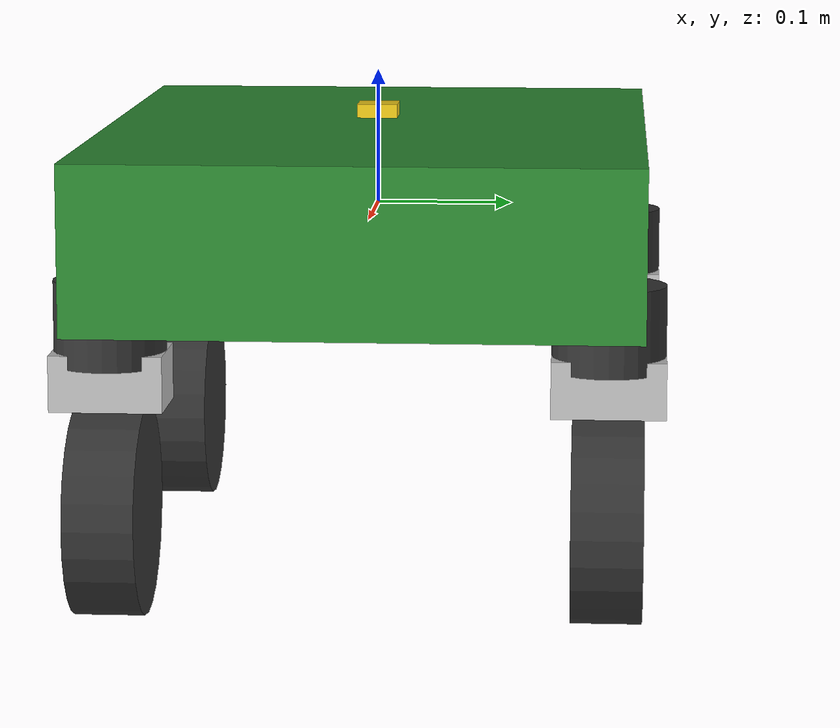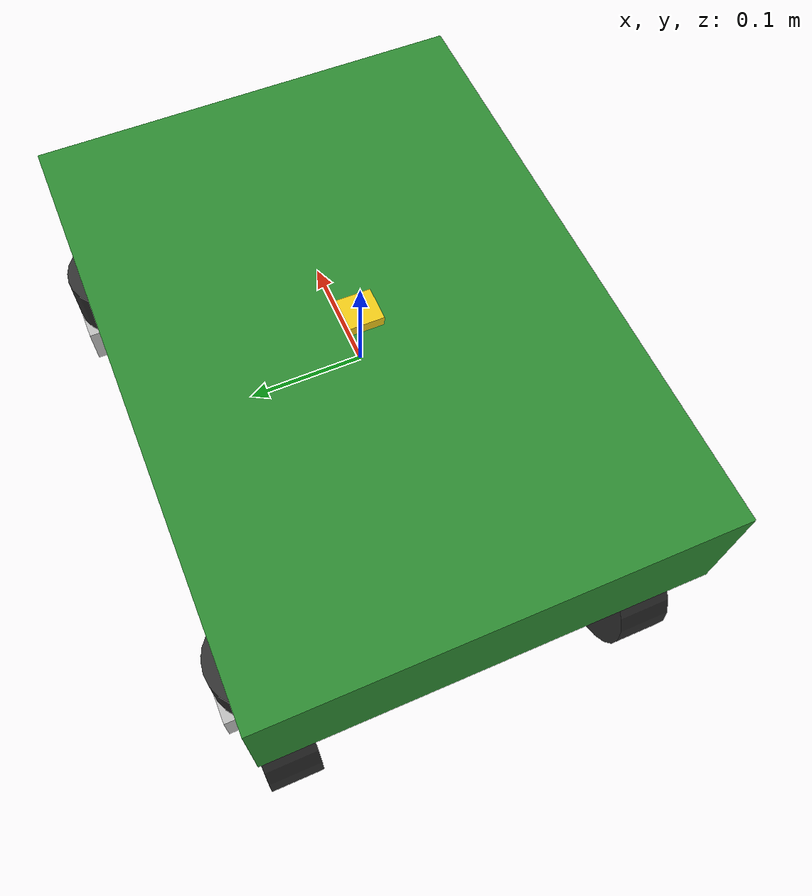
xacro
<?xml version="1.0"?>
<robot name="robot_padi_swerve" xmlns:xacro="http://www.ros.org/wiki/xacro">

  <!-- ═══ PARAMETER ═══════════════════════════════════════════════ -->
  <xacro:property name="wheel_base"    value="0.40"/>  <!-- jarak depan-belakang -->
  <xacro:property name="track_width"   value="0.35"/>  <!-- jarak kiri-kanan -->
  <xacro:property name="wheel_radius"  value="0.075"/> <!-- jari-jari roda -->
  <xacro:property name="wheel_width"   value="0.05"/>  <!-- lebar roda -->
  <xacro:property name="chassis_l"     value="0.55"/>
  <xacro:property name="chassis_w"     value="0.40"/>
  <xacro:property name="chassis_h"     value="0.12"/>
  <xacro:property name="chassis_mass"  value="8.0"/>
  <xacro:property name="wheel_mass"    value="0.4"/>
  <xacro:property name="module_mass"   value="0.5"/>

  <!-- ═══ MATERIAL ════════════════════════════════════════════════ -->
  <material name="green_matte">
    <color rgba="0.18 0.55 0.20 1.0"/>
  </material>
  <material name="dark_gray">
    <color rgba="0.20 0.20 0.20 1.0"/>
  </material>
  <material name="silver">
    <color rgba="0.75 0.75 0.75 1.0"/>
  </material>
  <material name="yellow">
    <color rgba="0.95 0.80 0.10 1.0"/>
  </material>

  <!-- ═══ INERTIA MACROS ══════════════════════════════════════════ -->
  <xacro:macro name="box_inertia" params="m l w h">
    <inertial>
      <mass value="${m}"/>
      <inertia
        ixx="${m*(w*w+h*h)/12}" ixy="0" ixz="0"
        iyy="${m*(l*l+h*h)/12}" iyz="0"
        izz="${m*(l*l+w*w)/12}"/>
    </inertial>
  </xacro:macro>

  <xacro:macro name="cylinder_inertia" params="m r h">
    <inertial>
      <mass value="${m}"/>
      <inertia
        ixx="${m*(3*r*r+h*h)/12}" ixy="0" ixz="0"
        iyy="${m*(3*r*r+h*h)/12}" iyz="0"
        izz="${m*r*r/2}"/>
    </inertial>
  </xacro:macro>

  <!-- ═══ CHASSIS (BASE LINK) ═════════════════════════════════════ -->
  <link name="base_link">
    <visual>
      <geometry>
        <box size="${chassis_l} ${chassis_w} ${chassis_h}"/>
      </geometry>
      <material name="green_matte"/>
    </visual>
    <collision>
      <geometry>
        <box size="${chassis_l} ${chassis_w} ${chassis_h}"/>
      </geometry>
    </collision>
    <xacro:box_inertia m="${chassis_mass}" l="${chassis_l}" w="${chassis_w}" h="${chassis_h}"/>
  </link>

  <!-- IMU Link -->
  <link name="imu_link">
    <visual>
      <geometry><box size="0.03 0.03 0.01"/></geometry>
      <material name="yellow"/>
    </visual>
    <inertial><mass value="0.01"/><inertia ixx="1e-6" ixy="0" ixz="0" iyy="1e-6" iyz="0" izz="1e-6"/></inertial>
  </link>
  <joint name="imu_joint" type="fixed">
    <parent link="base_link"/>
    <child link="imu_link"/>
    <origin xyz="0 0 ${chassis_h/2 + 0.01}" rpy="0 0 0"/>
  </joint>

  <!-- ═══ SWERVE MODULE MACRO ═════════════════════════════════════ -->
  <!--
    Setiap modul terdiri dari:
      [base_link] --fixed--> [module_mount_X] --revolute(Z)--> [X_steer_link] --continuous(Y)--> [X_wheel]
  -->
  <xacro:macro name="swerve_module" params="name x y">

    <!-- Mount frame (fixed ke chassis) -->
    <link name="${name}_mount">
      <visual>
        <geometry><cylinder radius="0.04" length="0.06"/></geometry>
        <material name="dark_gray"/>
      </visual>
      <inertial>
        <mass value="0.1"/>
        <inertia ixx="1e-4" ixy="0" ixz="0" iyy="1e-4" iyz="0" izz="1e-4"/>
      </inertial>
    </link>
    <joint name="${name}_mount_joint" type="fixed">
      <parent link="base_link"/>
      <child link="${name}_mount"/>
      <origin xyz="${x} ${y} ${-chassis_h/2}" rpy="0 0 0"/>
    </joint>

    <!-- Steering link (berputar sumbu Z) -->
    <link name="${name}_steer_link">
      <visual>
        <geometry><box size="0.06 0.08 0.04"/></geometry>
        <material name="silver"/>
      </visual>
      <collision>
        <geometry><box size="0.06 0.08 0.04"/></geometry>
      </collision>
      <xacro:box_inertia m="${module_mass}" l="0.06" w="0.08" h="0.04"/>
    </link>
    <joint name="${name}_steering_joint" type="revolute">
      <parent link="${name}_mount"/>
      <child link="${name}_steer_link"/>
      <origin xyz="0 0 -0.04" rpy="0 0 0"/>
      <axis xyz="0 0 1"/>
      <limit lower="-3.14159" upper="3.14159" effort="10.0" velocity="3.0"/>
      <dynamics damping="0.5" friction="0.1"/>
    </joint>

    <!-- Roda (berputar sumbu Y) -->
    <link name="${name}_wheel">
      <visual>
        <geometry>
          <cylinder radius="${wheel_radius}" length="${wheel_width}"/>
        </geometry>
        <origin rpy="1.5708 0 0"/>
        <material name="dark_gray"/>
      </visual>
      <collision>
        <geometry>
          <cylinder radius="${wheel_radius}" length="${wheel_width}"/>
        </geometry>
        <origin rpy="1.5708 0 0"/>
      </collision>
      <xacro:cylinder_inertia m="${wheel_mass}" r="${wheel_radius}" h="${wheel_width}"/>
    </link>
    <joint name="${name}_wheel_joint" type="continuous">
      <parent link="${name}_steer_link"/>
      <child link="${name}_wheel"/>
      <origin xyz="0 0 ${-wheel_radius - 0.02}" rpy="0 0 0"/>
      <axis xyz="0 1 0"/>
      <dynamics damping="0.1" friction="0.05"/>
    </joint>

  </xacro:macro>

  <!-- ═══ INSTANTIASI 4 MODUL SWERVE ═════════════════════════════ -->
  <xacro:swerve_module name="front_left"
      x="${wheel_base/2}"   y="${track_width/2}"/>
  <xacro:swerve_module name="front_right"
      x="${wheel_base/2}"   y="${-track_width/2}"/>
  <xacro:swerve_module name="rear_left"
      x="${-wheel_base/2}"  y="${track_width/2}"/>
  <xacro:swerve_module name="rear_right"
      x="${-wheel_base/2}"  y="${-track_width/2}"/>

  <!-- ═══ GAZEBO PLUGINS ══════════════════════════════════════════ -->
  <gazebo>
    <plugin filename="libgazebo_ros2_control.so" name="gazebo_ros2_control">
      <parameters>$(find swerve_description)/config/ros2_control.yaml</parameters>
    </plugin>
  </gazebo>

  <!-- Material Gazebo -->
  <gazebo reference="base_link">
    <material>Gazebo/Green</material>
  </gazebo>
  <gazebo reference="front_left_wheel">
    <material>Gazebo/DarkGray</material>
    <mu1>0.8</mu1>
    <mu2>0.8</mu2>
    <kp>500000.0</kp>
    <kd>10.0</kd>
  </gazebo>
  <gazebo reference="front_right_wheel">
    <material>Gazebo/DarkGray</material>
    <mu1>0.8</mu1><mu2>0.8</mu2><kp>500000.0</kp><kd>10.0</kd>
  </gazebo>
  <gazebo reference="rear_left_wheel">
    <material>Gazebo/DarkGray</material>
    <mu1>0.8</mu1><mu2>0.8</mu2><kp>500000.0</kp><kd>10.0</kd>
  </gazebo>
  <gazebo reference="rear_right_wheel">
    <material>Gazebo/DarkGray</material>
    <mu1>0.8</mu1><mu2>0.8</mu2><kp>500000.0</kp><kd>10.0</kd>
  </gazebo>

  <!-- IMU sensor plugin -->
  <gazebo reference="imu_link">
    <sensor name="imu_sensor" type="imu">
      <always_on>true</always_on>
      <update_rate>50</update_rate>
      <plugin filename="libgazebo_ros_imu_sensor.so" name="imu_plugin">
        <ros>
          <remapping>~/out:=/imu/data</remapping>
        </ros>
        <initial_orientation_as_reference>false</initial_orientation_as_reference>
      </plugin>
    </sensor>
  </gazebo>

</robot>
